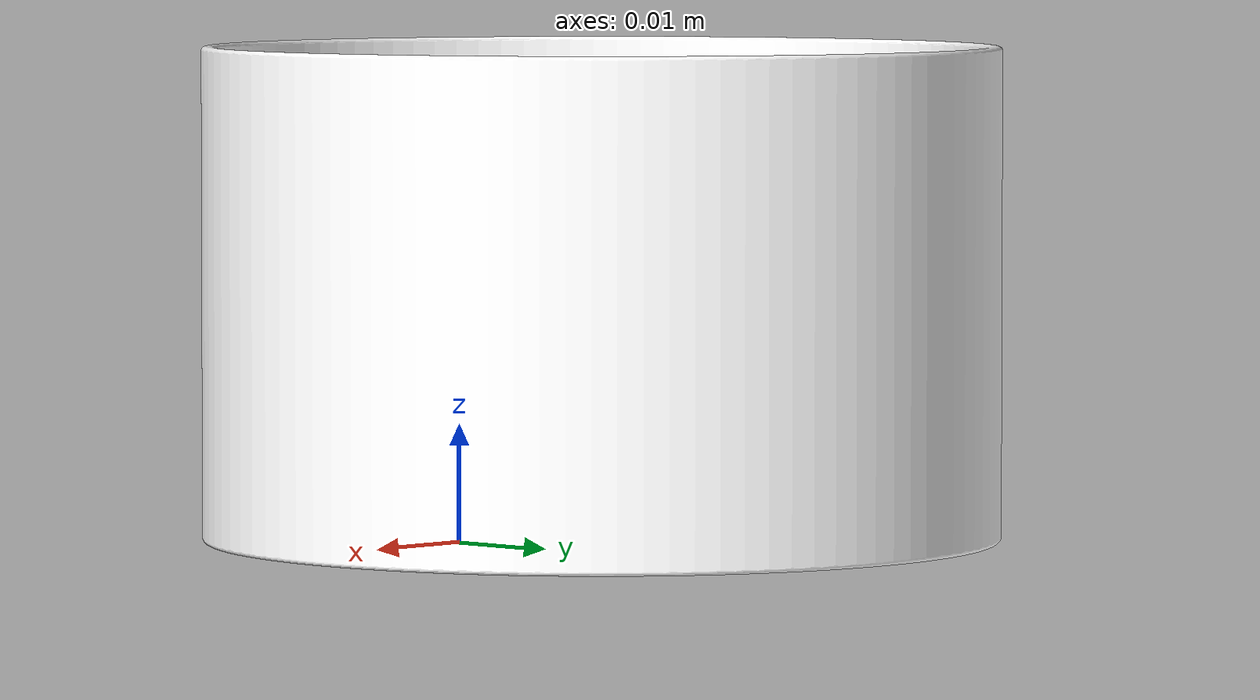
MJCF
<?xml version="1.0" ?>
<mujoco model="peginhole-board">
  <asset>
    <mesh file="../meshes/peginhole-board.stl" name="peginhole-board_mesh" scale="0.0007 0.0007 0.0007"/>
    <material name="peginhole-board" reflectance="0.7" texrepeat="15 15" texuniform="true"/>
  </asset>
  <worldbody>
    <body>
      <body name="object">
        <geom pos="0 0 0" mesh="peginhole-board_mesh" type="mesh" solimp="0.998 0.998 0.001" solref="0.001 1" density="50" friction="0.95 0.3 0.1" material="peginhole-board" group="0" condim="4"/>
      </body>
      <site rgba="0 0 0 0" size="0.005" pos="-0.033949999975326425 -0.03394589312135397 -0.015597443098482969" name="bottom_site"/>
      <site rgba="0 0 0 0" size="0.005" pos="0.03393357775294506 0.03394589574278177 0.02640255690151703" name="top_site"/>
      <site rgba="0 0 0 0" size="0.005" pos="0.03394178886413574 0.03394589443206787 0" name="horizontal_radius_site"/>
    </body>
  </worldbody>
</mujoco>
